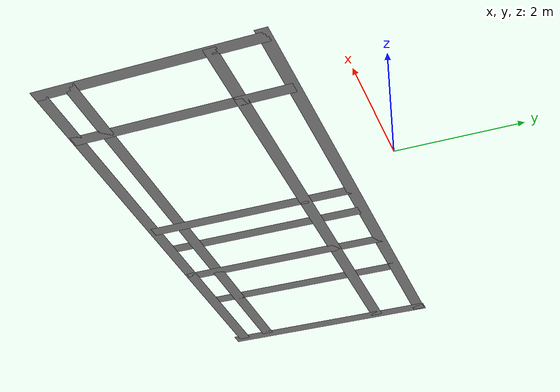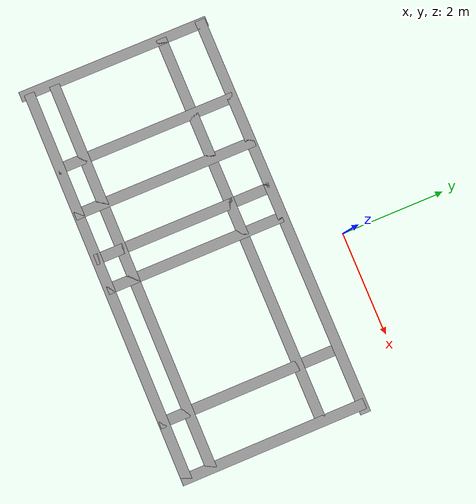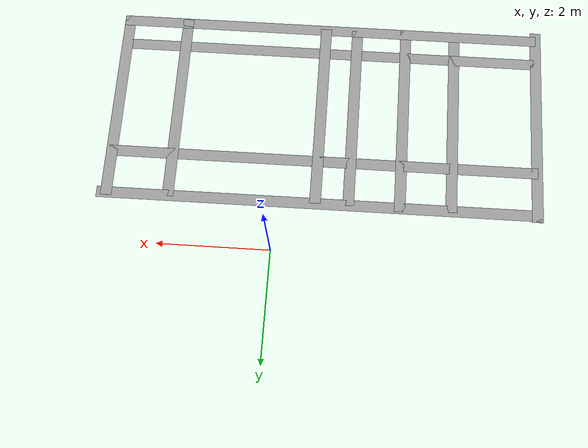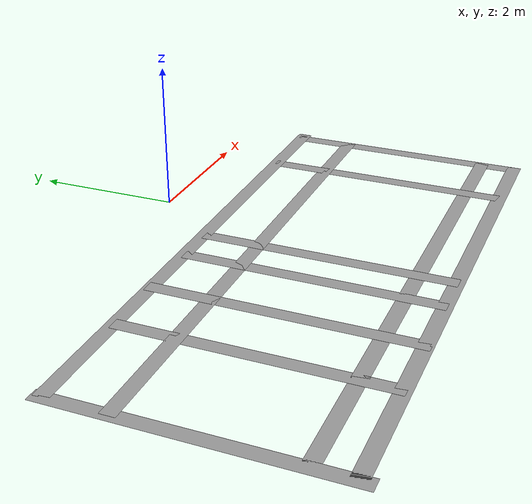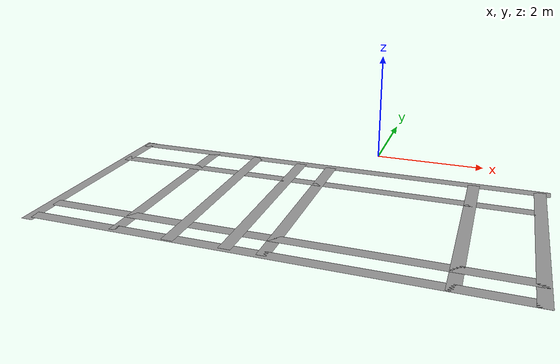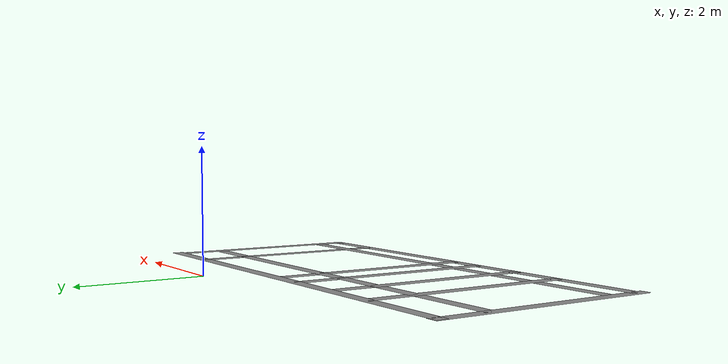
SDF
<?xml version='1.0'?>
<sdf version='1.4'>
  <model name='BuildingDefaultName'>
    <link name='Wall_11'>
      <collision name='Wall_11_Collision'>
        <geometry>
          <box>
            <size>3.59 0.2 0</size>
          </box>
        </geometry>
        <pose>0 0 0 0 -0 0</pose>
      </collision>
      <visual name='Wall_11_Visual'>
        <pose>0 0 0 0 -0 0</pose>
        <geometry>
          <box>
            <size>3.59 0.2 0</size>
          </box>
        </geometry>
        <material>
          <script>
            <uri>file://media/materials/scripts/gazebo.material</uri>
            <name>Gazebo/Grey</name>
          </script>
        </material>
      </visual>
      <velocity_decay>
        <linear>0</linear>
        <angular>0</angular>
      </velocity_decay>
      <pose>-2.22 -2.635 0 0 0 -1.5708</pose>
    </link>
    <link name='Wall_13'>
      <collision name='Wall_13_Collision'>
        <geometry>
          <box>
            <size>3.49 0.2 0</size>
          </box>
        </geometry>
        <pose>0 0 0 0 -0 0</pose>
      </collision>
      <visual name='Wall_13_Visual'>
        <pose>0 0 0 0 -0 0</pose>
        <geometry>
          <box>
            <size>3.49 0.2 0</size>
          </box>
        </geometry>
        <material>
          <script>
            <uri>file://media/materials/scripts/gazebo.material</uri>
            <name>Gazebo/Grey</name>
          </script>
        </material>
      </visual>
      <velocity_decay>
        <linear>0</linear>
        <angular>0</angular>
      </velocity_decay>
      <pose>-1.31 -2.645 0 0 0 -1.5708</pose>
    </link>
    <link name='Wall_16'>
      <collision name='Wall_16_Collision'>
        <geometry>
          <box>
            <size>3.48 0.2 0</size>
          </box>
        </geometry>
        <pose>0 0 0 0 -0 0</pose>
      </collision>
      <visual name='Wall_16_Visual'>
        <pose>0 0 0 0 -0 0</pose>
        <geometry>
          <box>
            <size>3.48 0.2 0</size>
          </box>
        </geometry>
        <material>
          <script>
            <uri>file://media/materials/scripts/gazebo.material</uri>
            <name>Gazebo/Grey</name>
          </script>
        </material>
      </visual>
      <velocity_decay>
        <linear>0</linear>
        <angular>0</angular>
      </velocity_decay>
      <pose>-0.72 -2.65 0 0 0 -1.5708</pose>
    </link>
    <link name='Wall_18'>
      <collision name='Wall_18_Collision'>
        <geometry>
          <box>
            <size>3.55026 0.2 0</size>
          </box>
        </geometry>
        <pose>0 0 0 0 -0 0</pose>
      </collision>
      <visual name='Wall_18_Visual'>
        <pose>0 0 0 0 -0 0</pose>
        <geometry>
          <box>
            <size>3.55026 0.2 0</size>
          </box>
        </geometry>
        <material>
          <script>
            <uri>file://media/materials/scripts/gazebo.material</uri>
            <name>Gazebo/Grey</name>
          </script>
        </material>
      </visual>
      <velocity_decay>
        <linear>0</linear>
        <angular>0</angular>
      </velocity_decay>
      <pose>1.9 -2.665 0 0 0 -1.5708</pose>
    </link>
    <link name='Wall_20'>
      <collision name='Wall_20_Collision'>
        <geometry>
          <box>
            <size>3.61 0.2 0</size>
          </box>
        </geometry>
        <pose>0 0 0 0 -0 0</pose>
      </collision>
      <visual name='Wall_20_Visual'>
        <pose>0 0 0 0 -0 0</pose>
        <geometry>
          <box>
            <size>3.61 0.2 0</size>
          </box>
        </geometry>
        <material>
          <script>
            <uri>file://media/materials/scripts/gazebo.material</uri>
            <name>Gazebo/Grey</name>
          </script>
        </material>
      </visual>
      <velocity_decay>
        <linear>0</linear>
        <angular>0</angular>
      </velocity_decay>
      <pose>3 -2.655 0 0 0 -1.5708</pose>
    </link>
    <link name='Wall_22'>
      <collision name='Wall_22_Collision'>
        <geometry>
          <box>
            <size>7.89 0.2 0</size>
          </box>
        </geometry>
        <pose>0 0 0 0 -0 0</pose>
      </collision>
      <visual name='Wall_22_Visual'>
        <pose>0 0 0 0 -0 0</pose>
        <geometry>
          <box>
            <size>7.89 0.2 0</size>
          </box>
        </geometry>
        <material>
          <script>
            <uri>file://media/materials/scripts/gazebo.material</uri>
            <name>Gazebo/Grey</name>
          </script>
        </material>
      </visual>
      <velocity_decay>
        <linear>0</linear>
        <angular>0</angular>
      </velocity_decay>
      <pose>-0.775 -0.9 0 0 -0 0</pose>
    </link>
    <link name='Wall_29'>
      <collision name='Wall_29_Collision'>
        <geometry>
          <box>
            <size>7.73 0.2 0</size>
          </box>
        </geometry>
        <pose>0 0 0 0 -0 0</pose>
      </collision>
      <visual name='Wall_29_Visual'>
        <pose>0 0 0 0 -0 0</pose>
        <geometry>
          <box>
            <size>7.73 0.2 0</size>
          </box>
        </geometry>
        <material>
          <script>
            <uri>file://media/materials/scripts/gazebo.material</uri>
            <name>Gazebo/Grey</name>
          </script>
        </material>
      </visual>
      <velocity_decay>
        <linear>0</linear>
        <angular>0</angular>
      </velocity_decay>
      <pose>-0.805 -1.7 0 0 -0 0</pose>
    </link>
    <link name='Wall_31'>
      <collision name='Wall_31_Collision'>
        <geometry>
          <box>
            <size>7.69 0.2 0</size>
          </box>
        </geometry>
        <pose>0 0 0 0 -0 0</pose>
      </collision>
      <visual name='Wall_31_Visual'>
        <pose>0 0 0 0 -0 0</pose>
        <geometry>
          <box>
            <size>7.69 0.2 0</size>
          </box>
        </geometry>
        <material>
          <script>
            <uri>file://media/materials/scripts/gazebo.material</uri>
            <name>Gazebo/Grey</name>
          </script>
        </material>
      </visual>
      <velocity_decay>
        <linear>0</linear>
        <angular>0</angular>
      </velocity_decay>
      <pose>-0.775 -3.87 0 0 -0 0</pose>
    </link>
    <link name='Wall_34'>
      <collision name='Wall_34_Collision'>
        <geometry>
          <box>
            <size>7.7555 0.2 0</size>
          </box>
        </geometry>
        <pose>0 0 0 0 -0 0</pose>
      </collision>
      <visual name='Wall_34_Visual'>
        <pose>0 0 0 0 -0 0</pose>
        <geometry>
          <box>
            <size>7.7555 0.2 0</size>
          </box>
        </geometry>
        <material>
          <script>
            <uri>file://media/materials/scripts/gazebo.material</uri>
            <name>Gazebo/Grey</name>
          </script>
        </material>
      </visual>
      <velocity_decay>
        <linear>0</linear>
        <angular>0</angular>
      </velocity_decay>
      <pose>-0.778 -4.361 0 0 -0 0</pose>
    </link>
    <link name='Wall_36'>
      <collision name='Wall_36_Collision'>
        <geometry>
          <box>
            <size>3.75048 0.2 0</size>
          </box>
        </geometry>
        <pose>0 0 0 0 -0 0</pose>
      </collision>
      <visual name='Wall_36_Visual'>
        <pose>0 0 0 0 -0 0</pose>
        <geometry>
          <box>
            <size>3.75048 0.2 0</size>
          </box>
        </geometry>
        <material>
          <script>
            <uri>file://media/materials/scripts/gazebo.material</uri>
            <name>Gazebo/Grey</name>
          </script>
        </material>
      </visual>
      <velocity_decay>
        <linear>0</linear>
        <angular>0</angular>
      </velocity_decay>
      <pose>-4.652 -2.658 0 0 0 -1.5708</pose>
    </link>
    <link name='Wall_9'>
      <collision name='Wall_9_Collision'>
        <geometry>
          <box>
            <size>3.52 0.2 0</size>
          </box>
        </geometry>
        <pose>0 0 0 0 -0 0</pose>
      </collision>
      <visual name='Wall_9_Visual'>
        <pose>0 0 0 0 -0 0</pose>
        <geometry>
          <box>
            <size>3.52 0.2 0</size>
          </box>
        </geometry>
        <material>
          <script>
            <uri>file://media/materials/scripts/gazebo.material</uri>
            <name>Gazebo/Grey</name>
          </script>
        </material>
      </visual>
      <velocity_decay>
        <linear>0</linear>
        <angular>0</angular>
      </velocity_decay>
      <pose>-3.13 -2.64 0 0 0 -1.5708</pose>
    </link>
    <static>1</static>
  </model>
</sdf>
